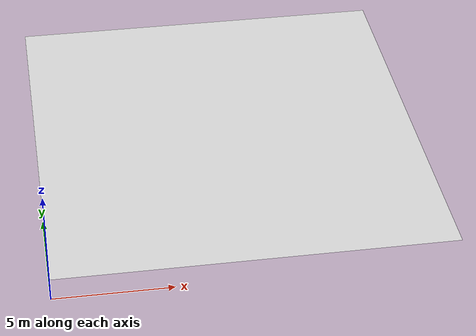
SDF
<?xml version="1.0" ?>
<sdf version="1.6">
  <model name="square_qr">
    <pose>0 0 1 0 0 0</pose>
    <static>true</static>
    <link name="link">
      <visual name="visual">
        <geometry>
          <mesh>
            <scale>6 6 0.001</scale>
            <uri>model://square_qr/meshes/square_qr.dae</uri>
          </mesh>
        </geometry>
        <material>
          <script>
            <name>Gazebo/White</name>
          </script>
        </material>
      </visual>
    </link>
  </model>
</sdf>
